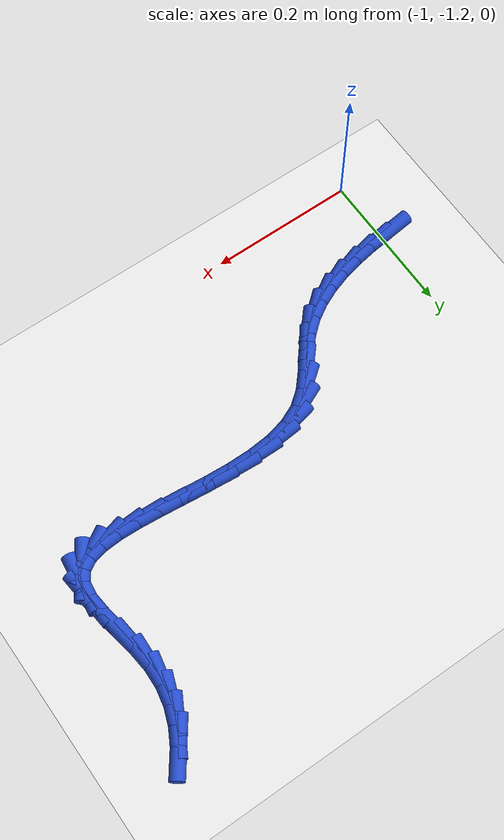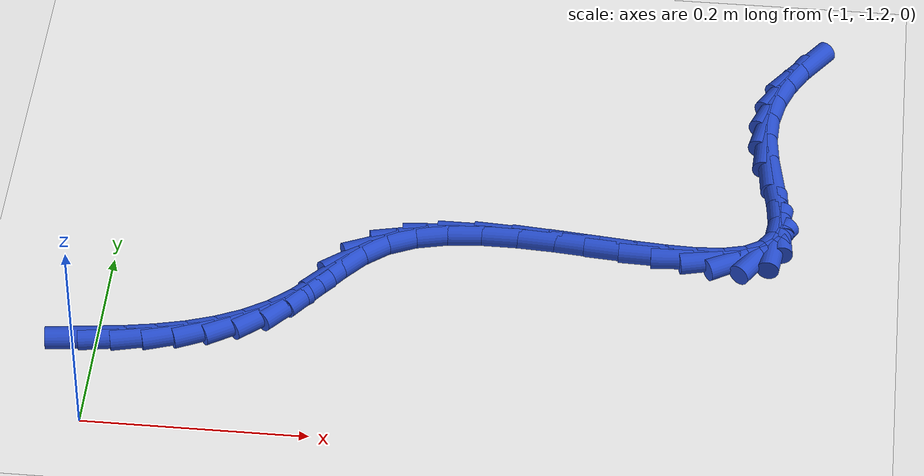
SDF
<sdf version="1.6">
 <world name="default">
  <model name="ground_plane">
   <static>1</static>
   <link name="link">
    <collision name="collision">
     <geometry><plane><normal>0 0 1</normal><size>100 100</size></plane></geometry>
     <surface><friction><ode><mu>100</mu><mu2>50</mu2></ode></friction></surface>
    </collision>
    <visual name="visual">
     <cast_shadows>0</cast_shadows>
     <geometry><plane><normal>0 0 1</normal><size>100 100</size></plane></geometry>
     <material>
      <script><uri>file://media/materials/scripts/gazebo.material</uri><name>Gazebo/WhiteGlow</name></script>
     </material>
    </visual>
   </link>
  </model>
  <model name="line">
   <link name="link_206">
    <pose>-1.0042686904124811 -1.1079160643575372 0.01 0 1.57 0.11817295133988336</pose>
    <collision name="collision">
     <geometry><cylinder><radius>0.01</radius><length>0.08</length></cylinder></geometry>
    </collision>
    <visual name="visual">
     <material>
      <script><name>Gazebo/Blue</name><uri>file://media/materials/scripts/gazebo.material</uri></script>
     </material>
     <geometry><cylinder><radius>0.01</radius><length>0.08</length></cylinder></geometry>
    </visual>
   </link>
   <link name="link_207">
    <pose>-0.976001316305681 -1.1045599884073296 0.01 0 1.57 0.1679751401143376</pose>
    <collision name="collision">
     <geometry><cylinder><radius>0.01</radius><length>0.08</length></cylinder></geometry>
    </collision>
    <visual name="visual">
     <material>
      <script><name>Gazebo/Blue</name><uri>file://media/materials/scripts/gazebo.material</uri></script>
     </material>
     <geometry><cylinder><radius>0.01</radius><length>0.08</length></cylinder></geometry>
    </visual>
   </link>
   <link name="link_208">
    <pose>-0.9483941793955207 -1.099878562853463 0.01 0 1.57 0.23476647701963888</pose>
    <collision name="collision">
     <geometry><cylinder><radius>0.01</radius><length>0.08</length></cylinder></geometry>
    </collision>
    <visual name="visual">
     <material>
      <script><name>Gazebo/Blue</name><uri>file://media/materials/scripts/gazebo.material</uri></script>
     </material>
     <geometry><cylinder><radius>0.01</radius><length>0.08</length></cylinder></geometry>
    </visual>
   </link>
   <link name="link_209">
    <pose>-0.9217530762098181 -1.093506628828573 0.01 0 1.57 0.32072768358971715</pose>
    <collision name="collision">
     <geometry><cylinder><radius>0.01</radius><length>0.08</length></cylinder></geometry>
    </collision>
    <visual name="visual">
     <material>
      <script><name>Gazebo/Blue</name><uri>file://media/materials/scripts/gazebo.material</uri></script>
     </material>
     <geometry><cylinder><radius>0.01</radius><length>0.08</length></cylinder></geometry>
    </visual>
   </link>
   <link name="link_210">
    <pose>-0.8963838032763944 -1.0850790274652962 0.01 0 1.57 0.4278127187205107</pose>
    <collision name="collision">
     <geometry><cylinder><radius>0.01</radius><length>0.08</length></cylinder></geometry>
    </collision>
    <visual name="visual">
     <material>
      <script><name>Gazebo/Blue</name><uri>file://media/materials/scripts/gazebo.material</uri></script>
     </material>
     <geometry><cylinder><radius>0.01</radius><length>0.08</length></cylinder></geometry>
    </visual>
   </link>
   <link name="link_211">
    <pose>-0.8725921571230679 -1.074230599896269 0.01 0 1.57 0.5566858391560827</pose>
    <collision name="collision">
     <geometry><cylinder><radius>0.01</radius><length>0.08</length></cylinder></geometry>
    </collision>
    <visual name="visual">
     <material>
      <script><name>Gazebo/Blue</name><uri>file://media/materials/scripts/gazebo.material</uri></script>
     </material>
     <geometry><cylinder><radius>0.01</radius><length>0.08</length></cylinder></geometry>
    </visual>
   </link>
   <link name="link_212">
    <pose>-0.8506839342776598 -1.0605961872541276 0.01 0 1.57 0.7052121098735948</pose>
    <collision name="collision">
     <geometry><cylinder><radius>0.01</radius><length>0.08</length></cylinder></geometry>
    </collision>
    <visual name="visual">
     <material>
      <script><name>Gazebo/Blue</name><uri>file://media/materials/scripts/gazebo.material</uri></script>
     </material>
     <geometry><cylinder><radius>0.01</radius><length>0.08</length></cylinder></geometry>
    </visual>
   </link>
   <link name="link_213">
    <pose>-0.830964931267988 -1.043810630671508 0.01 0 1.57 0.8530050472874824</pose>
    <collision name="collision">
     <geometry><cylinder><radius>0.01</radius><length>0.08</length></cylinder></geometry>
    </collision>
    <visual name="visual">
     <material>
      <script><name>Gazebo/Blue</name><uri>file://media/materials/scripts/gazebo.material</uri></script>
     </material>
     <geometry><cylinder><radius>0.01</radius><length>0.08</length></cylinder></geometry>
    </visual>
   </link>
   <link name="link_214">
    <pose>-0.8135044988271759 -1.0238139760189642 0.01 0 1.57 0.9103433168910422</pose>
    <collision name="collision">
     <geometry><cylinder><radius>0.01</radius><length>0.08</length></cylinder></geometry>
    </collision>
    <visual name="visual">
     <material>
      <script><name>Gazebo/Blue</name><uri>file://media/materials/scripts/gazebo.material</uri></script>
     </material>
     <geometry><cylinder><radius>0.01</radius><length>0.08</length></cylinder></geometry>
    </visual>
   </link>
   <link name="link_215">
    <pose>-0.7969027141196807 -1.0024428106345142 0.01 0 1.57 0.8506325569106372</pose>
    <collision name="collision">
     <geometry><cylinder><radius>0.01</radius><length>0.08</length></cylinder></geometry>
    </collision>
    <visual name="visual">
     <material>
      <script><name>Gazebo/Blue</name><uri>file://media/materials/scripts/gazebo.material</uri></script>
     </material>
     <geometry><cylinder><radius>0.01</radius><length>0.08</length></cylinder></geometry>
    </visual>
   </link>
   <link name="link_216">
    <pose>-0.7791961407081079 -0.9822611064196679 0.01 0 1.57 0.6693219765269918</pose>
    <collision name="collision">
     <geometry><cylinder><radius>0.01</radius><length>0.08</length></cylinder></geometry>
    </collision>
    <visual name="visual">
     <material>
      <script><name>Gazebo/Blue</name><uri>file://media/materials/scripts/gazebo.material</uri></script>
     </material>
     <geometry><cylinder><radius>0.01</radius><length>0.08</length></cylinder></geometry>
    </visual>
   </link>
   <link name="link_217">
    <pose>-0.7584252346015788 -0.9658281797340185 0.01 0 1.57 0.4201551133679386</pose>
    <collision name="collision">
     <geometry><cylinder><radius>0.01</radius><length>0.08</length></cylinder></geometry>
    </collision>
    <visual name="visual">
     <material>
      <script><name>Gazebo/Blue</name><uri>file://media/materials/scripts/gazebo.material</uri></script>
     </material>
     <geometry><cylinder><radius>0.01</radius><length>0.08</length></cylinder></geometry>
    </visual>
   </link>
   <link name="link_218">
    <pose>-0.7334710733119726 -0.954679693413841 0.01 0 1.57 0.2239751771145935</pose>
    <collision name="collision">
     <geometry><cylinder><radius>0.01</radius><length>0.08</length></cylinder></geometry>
    </collision>
    <visual name="visual">
     <material>
      <script><name>Gazebo/Blue</name><uri>file://media/materials/scripts/gazebo.material</uri></script>
     </material>
     <geometry><cylinder><radius>0.01</radius><length>0.08</length></cylinder></geometry>
    </visual>
   </link>
   <link name="link_219">
    <pose>-0.704988423831857 -0.9481914280175899 0.01 0 1.57 0.0873481197571808</pose>
    <collision name="collision">
     <geometry><cylinder><radius>0.01</radius><length>0.08</length></cylinder></geometry>
    </collision>
    <visual name="visual">
     <material>
      <script><name>Gazebo/Blue</name><uri>file://media/materials/scripts/gazebo.material</uri></script>
     </material>
     <geometry><cylinder><radius>0.01</radius><length>0.08</length></cylinder></geometry>
    </visual>
   </link>
   <link name="link_220">
    <pose>-0.6738570144570343 -0.9454652210390765 0.01 0 1.57 -0.004184993426377133</pose>
    <collision name="collision">
     <geometry><cylinder><radius>0.01</radius><length>0.08</length></cylinder></geometry>
    </collision>
    <visual name="visual">
     <material>
      <script><name>Gazebo/Blue</name><uri>file://media/materials/scripts/gazebo.material</uri></script>
     </material>
     <geometry><cylinder><radius>0.01</radius><length>0.08</length></cylinder></geometry>
    </visual>
   </link>
   <link name="link_221">
    <pose>-0.6409565734833108 -0.9456029099721132 0.01 0 1.57 -0.06217009601484373</pose>
    <collision name="collision">
     <geometry><cylinder><radius>0.01</radius><length>0.08</length></cylinder></geometry>
    </collision>
    <visual name="visual">
     <material>
      <script><name>Gazebo/Blue</name><uri>file://media/materials/scripts/gazebo.material</uri></script>
     </material>
     <geometry><cylinder><radius>0.01</radius><length>0.08</length></cylinder></geometry>
    </visual>
   </link>
   <link name="link_222">
    <pose>-0.6071668292064885 -0.9477063323105117 0.01 0 1.57 -0.09354444346774732</pose>
    <collision name="collision">
     <geometry><cylinder><radius>0.01</radius><length>0.08</length></cylinder></geometry>
    </collision>
    <visual name="visual">
     <material>
      <script><name>Gazebo/Blue</name><uri>file://media/materials/scripts/gazebo.material</uri></script>
     </material>
     <geometry><cylinder><radius>0.01</radius><length>0.08</length></cylinder></geometry>
    </visual>
   </link>
   <link name="link_223">
    <pose>-0.5733675099223735 -0.9508773255480847 0.01 0 1.57 -0.10109620576174982</pose>
    <collision name="collision">
     <geometry><cylinder><radius>0.01</radius><length>0.08</length></cylinder></geometry>
    </collision>
    <visual name="visual">
     <material>
      <script><name>Gazebo/Blue</name><uri>file://media/materials/scripts/gazebo.material</uri></script>
     </material>
     <geometry><cylinder><radius>0.01</radius><length>0.08</length></cylinder></geometry>
    </visual>
   </link>
   <link name="link_224">
    <pose>-0.5404383439267684 -0.954217727178644 0.01 0 1.57 -0.08356719134184229</pose>
    <collision name="collision">
     <geometry><cylinder><radius>0.01</radius><length>0.08</length></cylinder></geometry>
    </collision>
    <visual name="visual">
     <material>
      <script><name>Gazebo/Blue</name><uri>file://media/materials/scripts/gazebo.material</uri></script>
     </material>
     <geometry><cylinder><radius>0.01</radius><length>0.08</length></cylinder></geometry>
    </visual>
   </link>
   <link name="link_225">
    <pose>-0.509259059515479 -0.9568293746960013 0.01 0 1.57 -0.03447817480864626</pose>
    <collision name="collision">
     <geometry><cylinder><radius>0.01</radius><length>0.08</length></cylinder></geometry>
    </collision>
    <visual name="visual">
     <material>
      <script><name>Gazebo/Blue</name><uri>file://media/materials/scripts/gazebo.material</uri></script>
     </material>
     <geometry><cylinder><radius>0.01</radius><length>0.08</length></cylinder></geometry>
    </visual>
   </link>
   <link name="link_226">
    <pose>-0.48070938498430843 -0.957814105593969 0.01 0 1.57 0.061437262026066745</pose>
    <collision name="collision">
     <geometry><cylinder><radius>0.01</radius><length>0.08</length></cylinder></geometry>
    </collision>
    <visual name="visual">
     <material>
      <script><name>Gazebo/Blue</name><uri>file://media/materials/scripts/gazebo.material</uri></script>
     </material>
     <geometry><cylinder><radius>0.01</radius><length>0.08</length></cylinder></geometry>
    </visual>
   </link>
   <link name="link_227">
    <pose>-0.4556690486290603 -0.9562737573663591 0.01 0 1.57 0.23587850831938798</pose>
    <collision name="collision">
     <geometry><cylinder><radius>0.01</radius><length>0.08</length></cylinder></geometry>
    </collision>
    <visual name="visual">
     <material>
      <script><name>Gazebo/Blue</name><uri>file://media/materials/scripts/gazebo.material</uri></script>
     </material>
     <geometry><cylinder><radius>0.01</radius><length>0.08</length></cylinder></geometry>
    </visual>
   </link>
   <link name="link_228">
    <pose>-0.4350177787455404 -0.951310167506984 0.01 0 1.57 0.5430686459190223</pose>
    <collision name="collision">
     <geometry><cylinder><radius>0.01</radius><length>0.08</length></cylinder></geometry>
    </collision>
    <visual name="visual">
     <material>
      <script><name>Gazebo/Blue</name><uri>file://media/materials/scripts/gazebo.material</uri></script>
     </material>
     <geometry><cylinder><radius>0.01</radius><length>0.08</length></cylinder></geometry>
    </visual>
   </link>
   <link name="link_229">
    <pose>-0.41963530362955137 -0.9420251735096552 0.01 0 1.57 1.0038817821367487</pose>
    <collision name="collision">
     <geometry><cylinder><radius>0.01</radius><length>0.08</length></cylinder></geometry>
    </collision>
    <visual name="visual">
     <material>
      <script><name>Gazebo/Blue</name><uri>file://media/materials/scripts/gazebo.material</uri></script>
     </material>
     <geometry><cylinder><radius>0.01</radius><length>0.08</length></cylinder></geometry>
    </visual>
   </link>
   <link name="link_230">
    <pose>-0.4104013515768986 -0.9275206128681859 0.01 0 1.57 1.445077979172968</pose>
    <collision name="collision">
     <geometry><cylinder><radius>0.01</radius><length>0.08</length></cylinder></geometry>
    </collision>
    <visual name="visual">
     <material>
      <script><name>Gazebo/Blue</name><uri>file://media/materials/scripts/gazebo.material</uri></script>
     </material>
     <geometry><cylinder><radius>0.01</radius><length>0.08</length></cylinder></geometry>
    </visual>
   </link>
   <link name="link_231">
    <pose>-0.4078316592547886 -0.9071883383803885 0.01 0 1.57 -1.4727842184015687</pose>
    <collision name="collision">
     <geometry><cylinder><radius>0.01</radius><length>0.08</length></cylinder></geometry>
    </collision>
    <visual name="visual">
     <material>
      <script><name>Gazebo/Blue</name><uri>file://media/materials/scripts/gazebo.material</uri></script>
     </material>
     <geometry><cylinder><radius>0.01</radius><length>0.08</length></cylinder></geometry>
    </visual>
   </link>
   <link name="link_232">
    <pose>-0.41029553546237063 -0.8821303985787281 0.01 0 1.57 -1.391583090685583</pose>
    <collision name="collision">
     <geometry><cylinder><radius>0.01</radius><length>0.08</length></cylinder></geometry>
    </collision>
    <visual name="visual">
     <material>
      <script><name>Gazebo/Blue</name><uri>file://media/materials/scripts/gazebo.material</uri></script>
     </material>
     <geometry><cylinder><radius>0.01</radius><length>0.08</length></cylinder></geometry>
    </visual>
   </link>
   <link name="link_233">
    <pose>-0.4153782240160466 -0.8540735564848575 0.01 0 1.57 -1.3924874817907695</pose>
    <collision name="collision">
     <geometry><cylinder><radius>0.01</radius><length>0.08</length></cylinder></geometry>
    </collision>
    <visual name="visual">
     <material>
      <script><name>Gazebo/Blue</name><uri>file://media/materials/scripts/gazebo.material</uri></script>
     </material>
     <geometry><cylinder><radius>0.01</radius><length>0.08</length></cylinder></geometry>
    </visual>
   </link>
   <link name="link_234">
    <pose>-0.4206638123594739 -0.8247454964762189 0.01 0 1.57 -1.4647718484602483</pose>
    <collision name="collision">
     <geometry><cylinder><radius>0.01</radius><length>0.08</length></cylinder></geometry>
    </collision>
    <visual name="visual">
     <material>
      <script><name>Gazebo/Blue</name><uri>file://media/materials/scripts/gazebo.material</uri></script>
     </material>
     <geometry><cylinder><radius>0.01</radius><length>0.08</length></cylinder></geometry>
    </visual>
   </link>
   <link name="link_235">
    <pose>-0.42373643323157284 -0.7958738719447647 0.01 0 1.57 1.533099326596377</pose>
    <collision name="collision">
     <geometry><cylinder><radius>0.01</radius><length>0.08</length></cylinder></geometry>
    </collision>
    <visual name="visual">
     <material>
      <script><name>Gazebo/Blue</name><uri>file://media/materials/scripts/gazebo.material</uri></script>
     </material>
     <geometry><cylinder><radius>0.01</radius><length>0.08</length></cylinder></geometry>
    </visual>
   </link>
   <link name="link_236">
    <pose>-0.4227160909383847 -0.7688197584030521 0.01 0 1.57 1.3698017227501162</pose>
    <collision name="collision">
     <geometry><cylinder><radius>0.01</radius><length>0.08</length></cylinder></geometry>
    </collision>
    <visual name="visual">
     <material>
      <script><name>Gazebo/Blue</name><uri>file://media/materials/scripts/gazebo.material</uri></script>
     </material>
     <geometry><cylinder><radius>0.01</radius><length>0.08</length></cylinder></geometry>
    </visual>
   </link>
   <link name="link_237">
    <pose>-0.4175911467872077 -0.7436661296887273 0.01 0 1.57 1.210492149678099</pose>
    <collision name="collision">
     <geometry><cylinder><radius>0.01</radius><length>0.08</length></cylinder></geometry>
    </collision>
    <visual name="visual">
     <material>
      <script><name>Gazebo/Blue</name><uri>file://media/materials/scripts/gazebo.material</uri></script>
     </material>
     <geometry><cylinder><radius>0.01</radius><length>0.08</length></cylinder></geometry>
    </visual>
   </link>
   <link name="link_238">
    <pose>-0.40875690219099486 -0.7202175809193729 0.01 0 1.57 1.0650928188664281</pose>
    <collision name="collision">
     <geometry><cylinder><radius>0.01</radius><length>0.08</length></cylinder></geometry>
    </collision>
    <visual name="visual">
     <material>
      <script><name>Gazebo/Blue</name><uri>file://media/materials/scripts/gazebo.material</uri></script>
     </material>
     <geometry><cylinder><radius>0.01</radius><length>0.08</length></cylinder></geometry>
    </visual>
   </link>
   <link name="link_239">
    <pose>-0.39660865856269967 -0.6982787072125747 0.01 0 1.57 0.9398713378466725</pose>
    <collision name="collision">
     <geometry><cylinder><radius>0.01</radius><length>0.08</length></cylinder></geometry>
    </collision>
    <visual name="visual">
     <material>
      <script><name>Gazebo/Blue</name><uri>file://media/materials/scripts/gazebo.material</uri></script>
     </material>
     <geometry><cylinder><radius>0.01</radius><length>0.08</length></cylinder></geometry>
    </visual>
   </link>
  </model>
 </world>
</sdf>
